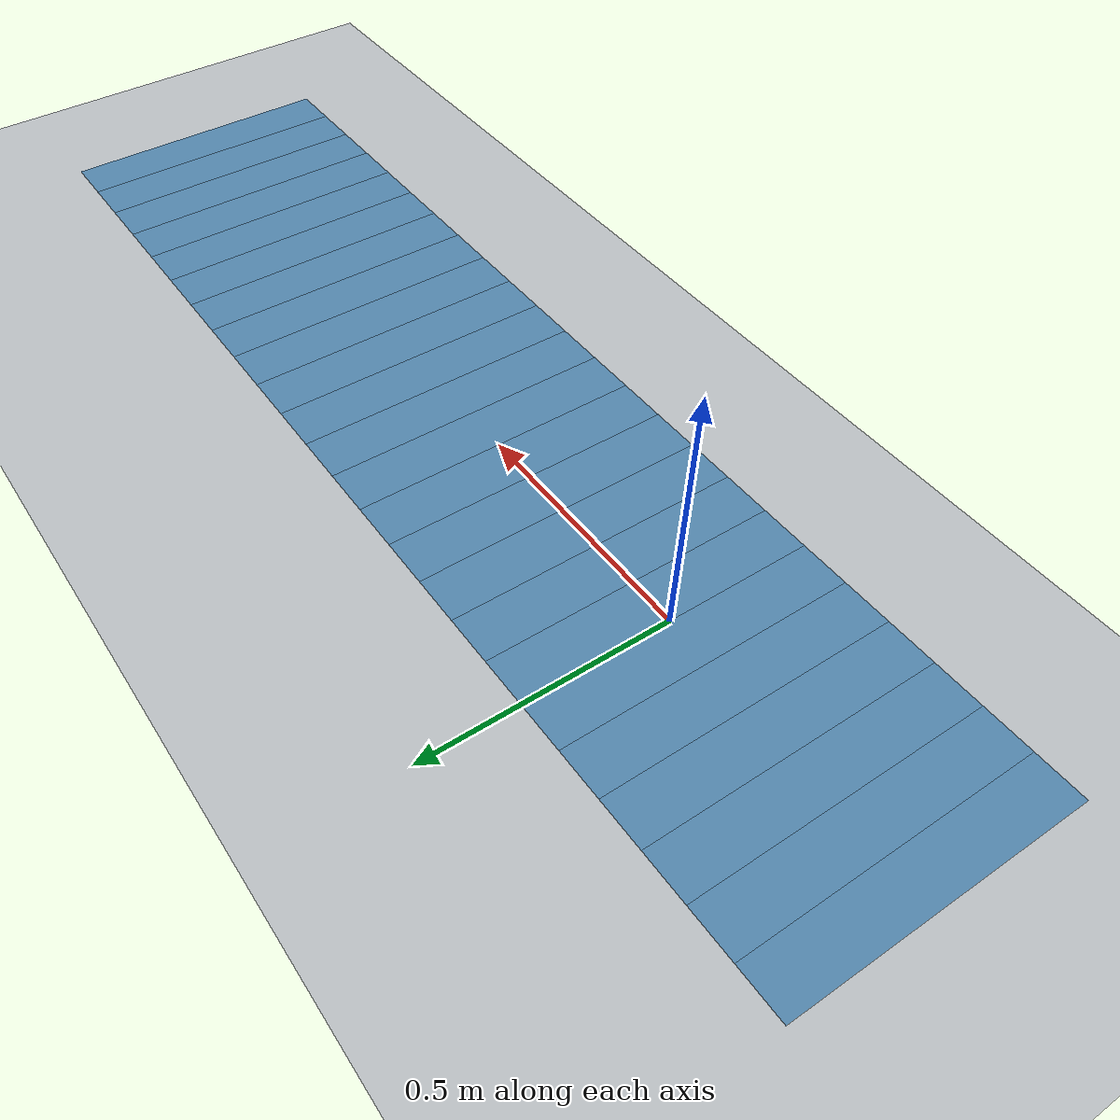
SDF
<?xml version="1.0"?>
<sdf version="1.11">
  <world name="formal_vehicle_validation">
    <physics name="1ms" type="ignored">
      <max_step_size>0.001</max_step_size>
      <real_time_factor>1.0</real_time_factor>
    </physics>
    <plugin filename="gz-sim-physics-system" name="gz::sim::systems::Physics"/>
    <!-- Required by every contact sensor. Formal contact gates preembed the
         model before world startup, avoiding Harmonic's dynamic-spawn sensor
         discovery limitation. -->
    <plugin filename="gz-sim-contact-system" name="gz::sim::systems::Contact"/>
    <plugin filename="gz-sim-user-commands-system" name="gz::sim::systems::UserCommands"/>
    <plugin filename="gz-sim-scene-broadcaster-system" name="gz::sim::systems::SceneBroadcaster"/>
    <plugin filename="gz-sim-imu-system" name="gz::sim::systems::Imu"/>
    <plugin filename="gz-sim-navsat-system" name="gz::sim::systems::NavSat"/>
    <plugin filename="gz-sim-sensors-system" name="gz::sim::systems::Sensors">
      <render_engine>ogre2</render_engine>
    </plugin>

    <!-- Fixed Beijing ENU origin for deterministic GNSS simulation. -->
    <spherical_coordinates>
      <surface_model>EARTH_WGS84</surface_model>
      <world_frame_orientation>ENU</world_frame_orientation>
      <latitude_deg>39.9042</latitude_deg>
      <longitude_deg>116.4074</longitude_deg>
      <elevation>43.5</elevation>
      <heading_deg>0</heading_deg>
    </spherical_coordinates>

    <light name="sun" type="directional">
      <pose>0 0 10 0 0 0</pose>
      <cast_shadows>true</cast_shadows>
      <direction>-0.5 0.1 -0.9</direction>
      <diffuse>0.9 0.9 0.9 1</diffuse>
      <specular>0.2 0.2 0.2 1</specular>
    </light>
    <model name="ground_plane">
      <static>true</static>
      <link name="ground">
        <collision name="collision"><geometry><plane><normal>0 0 1</normal><size>20 20</size></plane></geometry></collision>
        <visual name="visual"><geometry><plane><normal>0 0 1</normal><size>20 20</size></plane></geometry>
          <material><ambient>0.55 0.57 0.58 1</ambient><diffuse>0.72 0.74 0.75 1</diffuse></material></visual>
      </link>
    </model>
    <model name="formal_recoverable_water_patch">
      <static>true</static>
      <pose>0.60 0 0.001 0 0 0</pose>
      <link name="water_layer">
        <visual name="water_strip_00">
          <pose>-1.15 0 0 0 0 0</pose>
          <geometry><box><size>0.10 0.60 0.002</size></box></geometry>
          <material>
            <ambient>0.03 0.20 0.34 0.55</ambient>
            <diffuse>0.04 0.38 0.64 0.55</diffuse>
            <specular>0.45 0.70 0.85 0.60</specular>
          </material>
          <transparency>0.45</transparency>
        </visual>
        <visual name="water_strip_01">
          <pose>-1.05 0 0 0 0 0</pose>
          <geometry><box><size>0.10 0.60 0.002</size></box></geometry>
          <material>
            <ambient>0.03 0.20 0.34 0.55</ambient>
            <diffuse>0.04 0.38 0.64 0.55</diffuse>
            <specular>0.45 0.70 0.85 0.60</specular>
          </material>
          <transparency>0.45</transparency>
        </visual>
        <visual name="water_strip_02">
          <pose>-0.95 0 0 0 0 0</pose>
          <geometry><box><size>0.10 0.60 0.002</size></box></geometry>
          <material>
            <ambient>0.03 0.20 0.34 0.55</ambient>
            <diffuse>0.04 0.38 0.64 0.55</diffuse>
            <specular>0.45 0.70 0.85 0.60</specular>
          </material>
          <transparency>0.45</transparency>
        </visual>
        <visual name="water_strip_03">
          <pose>-0.85 0 0 0 0 0</pose>
          <geometry><box><size>0.10 0.60 0.002</size></box></geometry>
          <material>
            <ambient>0.03 0.20 0.34 0.55</ambient>
            <diffuse>0.04 0.38 0.64 0.55</diffuse>
            <specular>0.45 0.70 0.85 0.60</specular>
          </material>
          <transparency>0.45</transparency>
        </visual>
        <visual name="water_strip_04">
          <pose>-0.75 0 0 0 0 0</pose>
          <geometry><box><size>0.10 0.60 0.002</size></box></geometry>
          <material>
            <ambient>0.03 0.20 0.34 0.55</ambient>
            <diffuse>0.04 0.38 0.64 0.55</diffuse>
            <specular>0.45 0.70 0.85 0.60</specular>
          </material>
          <transparency>0.45</transparency>
        </visual>
        <visual name="water_strip_05">
          <pose>-0.65 0 0 0 0 0</pose>
          <geometry><box><size>0.10 0.60 0.002</size></box></geometry>
          <material>
            <ambient>0.03 0.20 0.34 0.55</ambient>
            <diffuse>0.04 0.38 0.64 0.55</diffuse>
            <specular>0.45 0.70 0.85 0.60</specular>
          </material>
          <transparency>0.45</transparency>
        </visual>
        <visual name="water_strip_06">
          <pose>-0.55 0 0 0 0 0</pose>
          <geometry><box><size>0.10 0.60 0.002</size></box></geometry>
          <material>
            <ambient>0.03 0.20 0.34 0.55</ambient>
            <diffuse>0.04 0.38 0.64 0.55</diffuse>
            <specular>0.45 0.70 0.85 0.60</specular>
          </material>
          <transparency>0.45</transparency>
        </visual>
        <visual name="water_strip_07">
          <pose>-0.45 0 0 0 0 0</pose>
          <geometry><box><size>0.10 0.60 0.002</size></box></geometry>
          <material>
            <ambient>0.03 0.20 0.34 0.55</ambient>
            <diffuse>0.04 0.38 0.64 0.55</diffuse>
            <specular>0.45 0.70 0.85 0.60</specular>
          </material>
          <transparency>0.45</transparency>
        </visual>
        <visual name="water_strip_08">
          <pose>-0.35 0 0 0 0 0</pose>
          <geometry><box><size>0.10 0.60 0.002</size></box></geometry>
          <material>
            <ambient>0.03 0.20 0.34 0.55</ambient>
            <diffuse>0.04 0.38 0.64 0.55</diffuse>
            <specular>0.45 0.70 0.85 0.60</specular>
          </material>
          <transparency>0.45</transparency>
        </visual>
        <visual name="water_strip_09">
          <pose>-0.25 0 0 0 0 0</pose>
          <geometry><box><size>0.10 0.60 0.002</size></box></geometry>
          <material>
            <ambient>0.03 0.20 0.34 0.55</ambient>
            <diffuse>0.04 0.38 0.64 0.55</diffuse>
            <specular>0.45 0.70 0.85 0.60</specular>
          </material>
          <transparency>0.45</transparency>
        </visual>
        <visual name="water_strip_10">
          <pose>-0.15 0 0 0 0 0</pose>
          <geometry><box><size>0.10 0.60 0.002</size></box></geometry>
          <material>
            <ambient>0.03 0.20 0.34 0.55</ambient>
            <diffuse>0.04 0.38 0.64 0.55</diffuse>
            <specular>0.45 0.70 0.85 0.60</specular>
          </material>
          <transparency>0.45</transparency>
        </visual>
        <visual name="water_strip_11">
          <pose>-0.05 0 0 0 0 0</pose>
          <geometry><box><size>0.10 0.60 0.002</size></box></geometry>
          <material>
            <ambient>0.03 0.20 0.34 0.55</ambient>
            <diffuse>0.04 0.38 0.64 0.55</diffuse>
            <specular>0.45 0.70 0.85 0.60</specular>
          </material>
          <transparency>0.45</transparency>
        </visual>
        <visual name="water_strip_12">
          <pose>0.05 0 0 0 0 0</pose>
          <geometry><box><size>0.10 0.60 0.002</size></box></geometry>
          <material>
            <ambient>0.03 0.20 0.34 0.55</ambient>
            <diffuse>0.04 0.38 0.64 0.55</diffuse>
            <specular>0.45 0.70 0.85 0.60</specular>
          </material>
          <transparency>0.45</transparency>
        </visual>
        <visual name="water_strip_13">
          <pose>0.15 0 0 0 0 0</pose>
          <geometry><box><size>0.10 0.60 0.002</size></box></geometry>
          <material>
            <ambient>0.03 0.20 0.34 0.55</ambient>
            <diffuse>0.04 0.38 0.64 0.55</diffuse>
            <specular>0.45 0.70 0.85 0.60</specular>
          </material>
          <transparency>0.45</transparency>
        </visual>
        <visual name="water_strip_14">
          <pose>0.25 0 0 0 0 0</pose>
          <geometry><box><size>0.10 0.60 0.002</size></box></geometry>
          <material>
            <ambient>0.03 0.20 0.34 0.55</ambient>
            <diffuse>0.04 0.38 0.64 0.55</diffuse>
            <specular>0.45 0.70 0.85 0.60</specular>
          </material>
          <transparency>0.45</transparency>
        </visual>
        <visual name="water_strip_15">
          <pose>0.35 0 0 0 0 0</pose>
          <geometry><box><size>0.10 0.60 0.002</size></box></geometry>
          <material>
            <ambient>0.03 0.20 0.34 0.55</ambient>
            <diffuse>0.04 0.38 0.64 0.55</diffuse>
            <specular>0.45 0.70 0.85 0.60</specular>
          </material>
          <transparency>0.45</transparency>
        </visual>
        <visual name="water_strip_16">
          <pose>0.45 0 0 0 0 0</pose>
          <geometry><box><size>0.10 0.60 0.002</size></box></geometry>
          <material>
            <ambient>0.03 0.20 0.34 0.55</ambient>
            <diffuse>0.04 0.38 0.64 0.55</diffuse>
            <specular>0.45 0.70 0.85 0.60</specular>
          </material>
          <transparency>0.45</transparency>
        </visual>
        <visual name="water_strip_17">
          <pose>0.55 0 0 0 0 0</pose>
          <geometry><box><size>0.10 0.60 0.002</size></box></geometry>
          <material>
            <ambient>0.03 0.20 0.34 0.55</ambient>
            <diffuse>0.04 0.38 0.64 0.55</diffuse>
            <specular>0.45 0.70 0.85 0.60</specular>
          </material>
          <transparency>0.45</transparency>
        </visual>
        <visual name="water_strip_18">
          <pose>0.65 0 0 0 0 0</pose>
          <geometry><box><size>0.10 0.60 0.002</size></box></geometry>
          <material>
            <ambient>0.03 0.20 0.34 0.55</ambient>
            <diffuse>0.04 0.38 0.64 0.55</diffuse>
            <specular>0.45 0.70 0.85 0.60</specular>
          </material>
          <transparency>0.45</transparency>
        </visual>
        <visual name="water_strip_19">
          <pose>0.75 0 0 0 0 0</pose>
          <geometry><box><size>0.10 0.60 0.002</size></box></geometry>
          <material>
            <ambient>0.03 0.20 0.34 0.55</ambient>
            <diffuse>0.04 0.38 0.64 0.55</diffuse>
            <specular>0.45 0.70 0.85 0.60</specular>
          </material>
          <transparency>0.45</transparency>
        </visual>
        <visual name="water_strip_20">
          <pose>0.85 0 0 0 0 0</pose>
          <geometry><box><size>0.10 0.60 0.002</size></box></geometry>
          <material>
            <ambient>0.03 0.20 0.34 0.55</ambient>
            <diffuse>0.04 0.38 0.64 0.55</diffuse>
            <specular>0.45 0.70 0.85 0.60</specular>
          </material>
          <transparency>0.45</transparency>
        </visual>
        <visual name="water_strip_21">
          <pose>0.95 0 0 0 0 0</pose>
          <geometry><box><size>0.10 0.60 0.002</size></box></geometry>
          <material>
            <ambient>0.03 0.20 0.34 0.55</ambient>
            <diffuse>0.04 0.38 0.64 0.55</diffuse>
            <specular>0.45 0.70 0.85 0.60</specular>
          </material>
          <transparency>0.45</transparency>
        </visual>
        <visual name="water_strip_22">
          <pose>1.05 0 0 0 0 0</pose>
          <geometry><box><size>0.10 0.60 0.002</size></box></geometry>
          <material>
            <ambient>0.03 0.20 0.34 0.55</ambient>
            <diffuse>0.04 0.38 0.64 0.55</diffuse>
            <specular>0.45 0.70 0.85 0.60</specular>
          </material>
          <transparency>0.45</transparency>
        </visual>
        <visual name="water_strip_23">
          <pose>1.15 0 0 0 0 0</pose>
          <geometry><box><size>0.10 0.60 0.002</size></box></geometry>
          <material>
            <ambient>0.03 0.20 0.34 0.55</ambient>
            <diffuse>0.04 0.38 0.64 0.55</diffuse>
            <specular>0.45 0.70 0.85 0.60</specular>
          </material>
          <transparency>0.45</transparency>
        </visual>
      </link>
    </model>
  </world>
</sdf>
